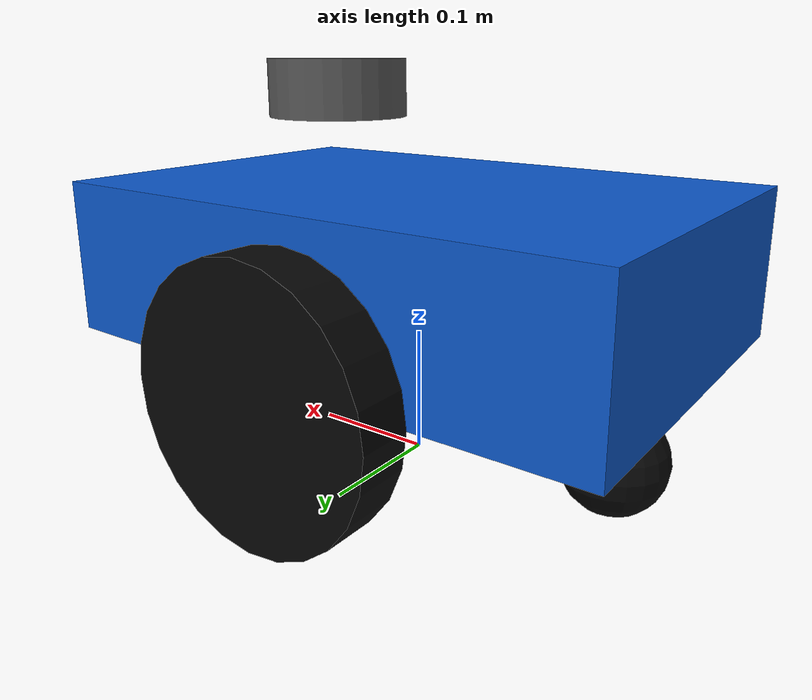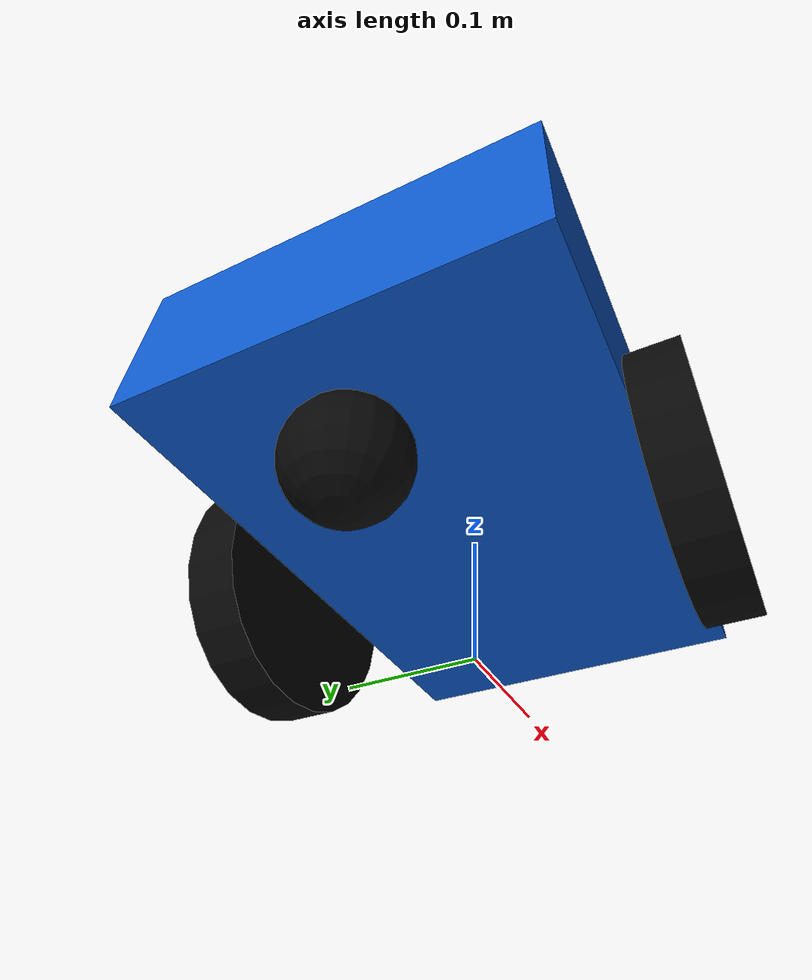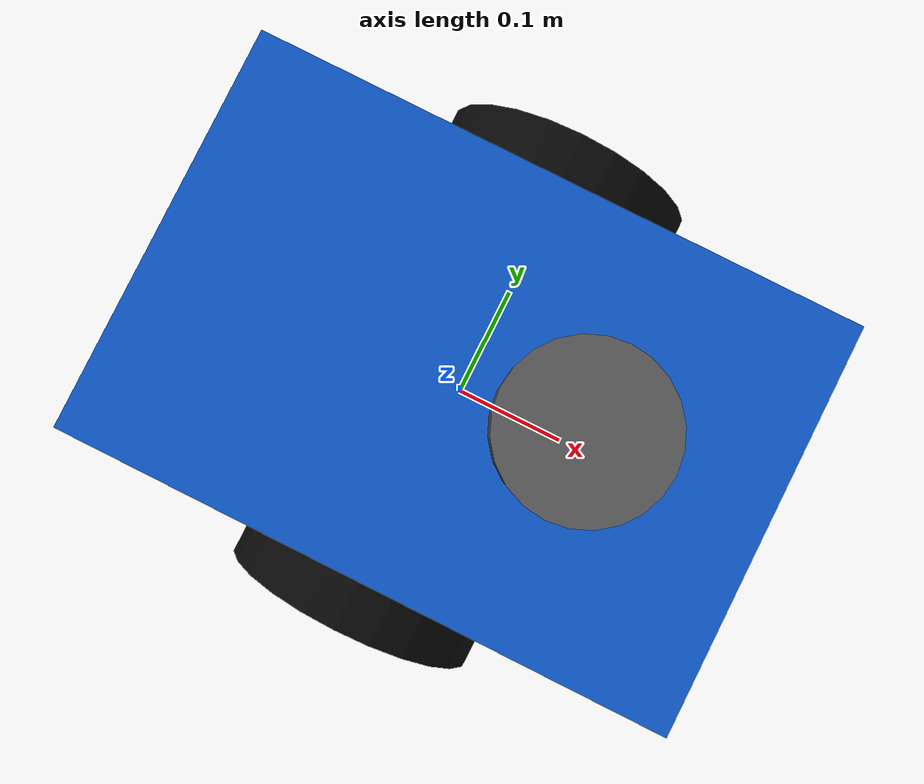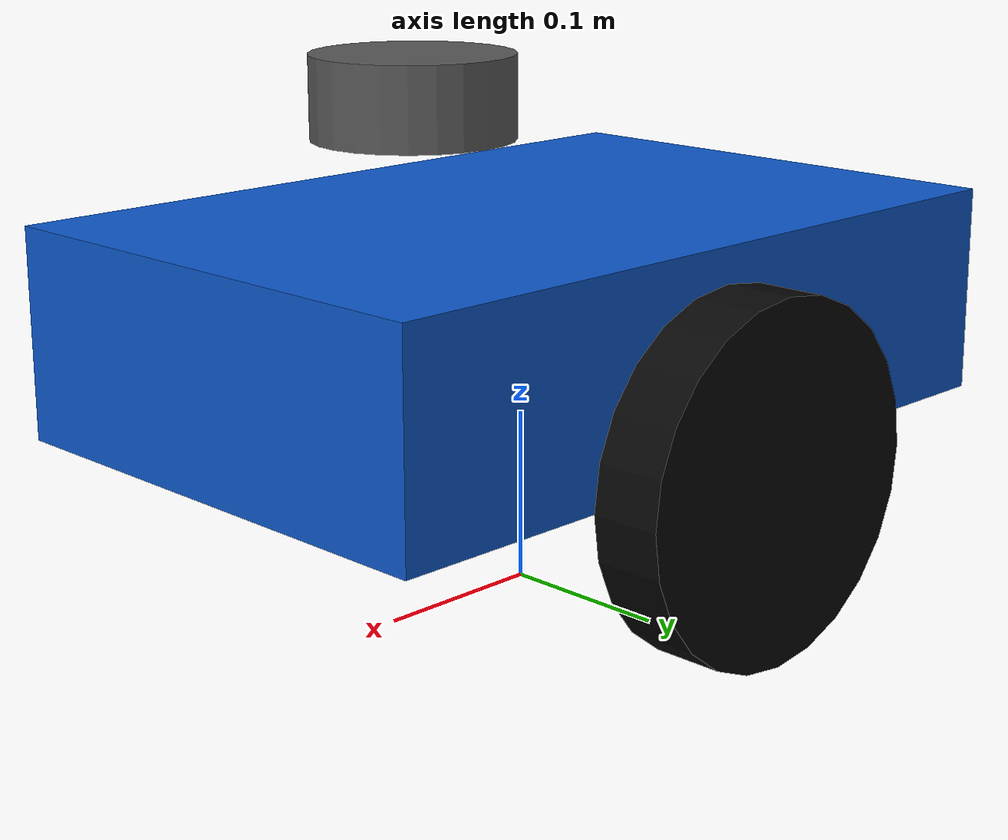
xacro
<?xml version="1.0"?>
<robot xmlns:xacro="http://www.ros.org/wiki/xacro" name="motionlab_car">

  <xacro:property name="body_length" value="0.45"/>
  <xacro:property name="body_width" value="0.30"/>
  <xacro:property name="body_height" value="0.12"/>
  <xacro:property name="wheel_radius" value="0.10"/>
  <xacro:property name="wheel_width" value="0.04"/>
  <xacro:property name="wheel_separation" value="0.34"/>

  <material name="body_blue">
    <color rgba="0.05 0.35 0.80 1.0"/>
  </material>

  <material name="wheel_black">
    <color rgba="0.03 0.03 0.03 1.0"/>
  </material>

  <material name="lidar_gray">
    <color rgba="0.35 0.35 0.35 1.0"/>
  </material>

  <link name="base_footprint"/>

  <joint name="base_footprint_joint" type="fixed">
    <parent link="base_footprint"/>
    <child link="base_link"/>
    <origin xyz="0 0 ${wheel_radius}" rpy="0 0 0"/>
  </joint>

  <link name="base_link">
    <visual>
      <origin xyz="0 0 0.06" rpy="0 0 0"/>
      <geometry>
        <box size="${body_length} ${body_width} ${body_height}"/>
      </geometry>
      <material name="body_blue"/>
    </visual>

    <collision>
      <origin xyz="0 0 0.06" rpy="0 0 0"/>
      <geometry>
        <box size="${body_length} ${body_width} ${body_height}"/>
      </geometry>
    </collision>

    <inertial>
      <origin xyz="-0.05 0 0.05" rpy="0 0 0"/>
      <mass value="5.0"/>
      <inertia ixx="0.0435" ixy="0.0" ixz="0.0"
               iyy="0.0904" iyz="0.0"
               izz="0.1219"/>
    </inertial>
  </link>

  <xacro:macro name="drive_wheel" params="side y_position">

    <link name="${side}_wheel_link">
      <visual>
        <origin xyz="0 0 0" rpy="1.5708 0 0"/>
        <geometry>
          <cylinder radius="${wheel_radius}" length="${wheel_width}"/>
        </geometry>
        <material name="wheel_black"/>
      </visual>

      <collision>
        <origin xyz="0 0 0" rpy="1.5708 0 0"/>
        <geometry>
          <cylinder radius="${wheel_radius}" length="${wheel_width}"/>
        </geometry>
      </collision>

      <inertial>
        <mass value="0.4"/>
        <inertia ixx="0.00105" ixy="0.0" ixz="0.0"
                 iyy="0.00200" iyz="0.0"
                 izz="0.00105"/>
      </inertial>
    </link>

    <joint name="${side}_wheel_joint" type="continuous">
      <parent link="base_link"/>
      <child link="${side}_wheel_link"/>
      <origin xyz="0 ${y_position} 0" rpy="0 0 0"/>
      <axis xyz="0 1 0"/>
    </joint>

  </xacro:macro>

  <xacro:drive_wheel side="left"  y_position="${wheel_separation / 2.0}"/>
  <xacro:drive_wheel side="right" y_position="${-wheel_separation / 2.0}"/>

  <link name="caster_link">
    <visual>
      <geometry>
        <sphere radius="0.04"/>
      </geometry>
      <material name="wheel_black"/>
    </visual>

    <collision>
      <geometry>
        <sphere radius="0.04"/>
      </geometry>
    </collision>

    <inertial>
      <mass value="0.1"/>
      <inertia ixx="0.000064" ixy="0.0" ixz="0.0"
               iyy="0.000064" iyz="0.0"
               izz="0.000064"/>
    </inertial>
  </link>

  <joint name="caster_joint" type="fixed">
    <parent link="base_link"/>
    <child link="caster_link"/>
    <origin xyz="-0.17 0 -0.06" rpy="0 0 0"/>
  </joint>

  <link name="lidar_link">
    <visual>
      <geometry>
        <cylinder radius="0.055" length="0.045"/>
      </geometry>
      <material name="lidar_gray"/>
    </visual>
    <inertial>
      <mass value="0.05"/>
      <inertia
      ixx="0.00004625"
      ixy="0.0"
      ixz="0.0"
      iyy="0.00004625"
      iyz="0.0"
      izz="0.000075625"/>
    </inertial>
  </link>

  <joint name="lidar_joint" type="fixed">
    <parent link="base_link"/>
    <child link="lidar_link"/>
    <origin xyz="0.08 0 0.19" rpy="0 0 0"/>
  </joint>

  <link name="imu_link">
    <visual>
      <geometry>
        <box size="0.04 0.03 0.015"/>
      </geometry>
      <material name="lidar_gray"/>
    </visual>
  </link>

  <joint name="imu_joint" type="fixed">
    <parent link="base_link"/>
    <child link="imu_link"/>
    <origin xyz="0 0 0.10" rpy="0 0 0"/>
  </joint>

  <gazebo>
    <plugin
      filename="gz-sim-diff-drive-system"
      name="gz::sim::systems::DiffDrive">

      <left_joint>left_wheel_joint</left_joint>
      <right_joint>right_wheel_joint</right_joint>

      <wheel_separation>${wheel_separation}</wheel_separation>
      <wheel_radius>${wheel_radius}</wheel_radius>
        <!-- Motion limits: avoid sudden pitch during start / stop -->
      <max_linear_acceleration>0.30</max_linear_acceleration>
      <min_linear_acceleration>-0.30</min_linear_acceleration>

      <max_angular_acceleration>0.80</max_angular_acceleration>
      <min_angular_acceleration>-0.80</min_angular_acceleration>

      <max_linear_jerk>1.0</max_linear_jerk>
      <min_linear_jerk>-1.0</min_linear_jerk>

      <topic>/cmd_vel</topic>
      <odom_topic>/odom</odom_topic>
      <tf_topic>/tf</tf_topic>
      <odom_publish_frequency>50</odom_publish_frequency>

      <frame_id>odom</frame_id>
      <child_frame_id>base_footprint</child_frame_id>
    </plugin>
  </gazebo>
  <gazebo reference="base_link">
    <sensor name="lidar_sensor" type="gpu_lidar">
      <pose>0.08 0 0.19 0 0 0</pose>
      <topic>/scan</topic>
      <gz_frame_id>lidar_link</gz_frame_id>
      <update_rate>10</update_rate>
      <always_on>true</always_on>
      <visualize>false</visualize>

      <lidar>
        <scan>
          <horizontal>
            <samples>360</samples>
            <resolution>1</resolution>
            <min_angle>-3.14159</min_angle>
            <max_angle>3.14159</max_angle>
          </horizontal>
        </scan>

        <range>
          <min>0.12</min>
          <max>8.0</max>
          <resolution>0.01</resolution>
        </range>
      </lidar>
    </sensor>
  </gazebo>
  <gazebo>
    <plugin filename="gz-sim-joint-state-publisher-system"
            name="gz::sim::systems::JointStatePublisher">
      <topic>/joint_states</topic>
      <joint_name>left_wheel_joint</joint_name>
      <joint_name>right_wheel_joint</joint_name>
    </plugin>
  </gazebo>

</robot>
